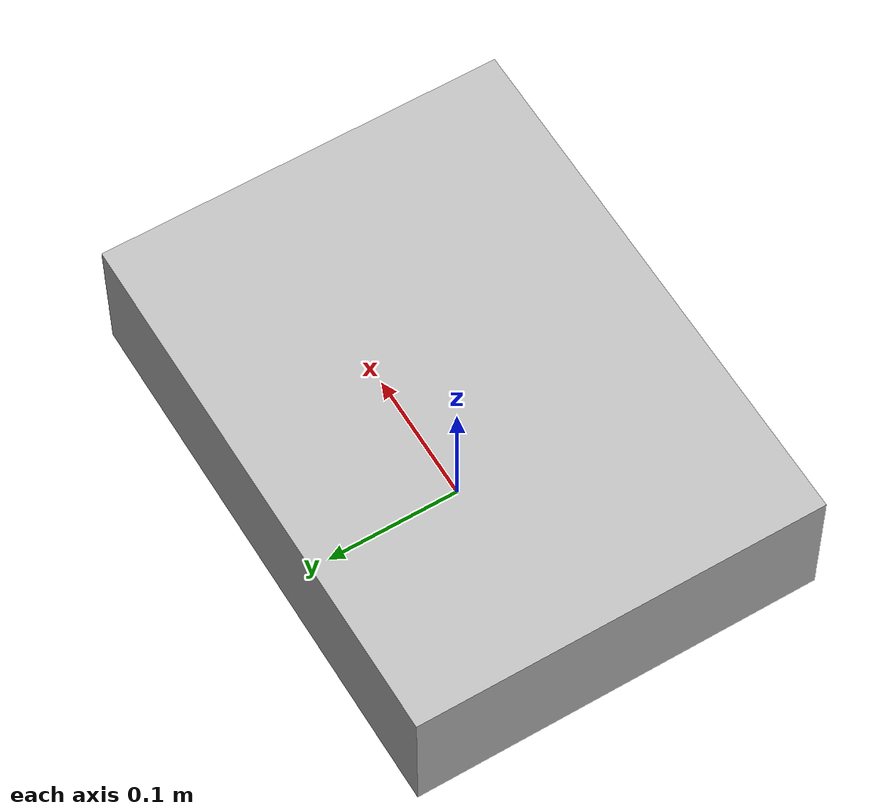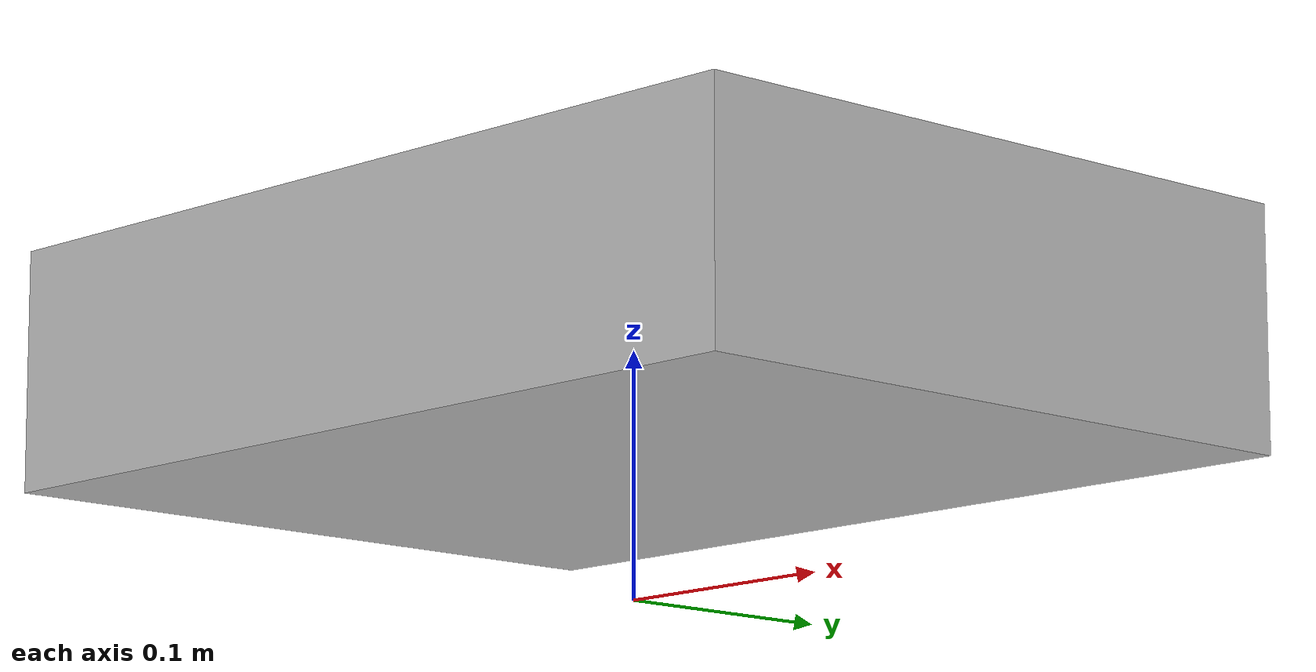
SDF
<?xml version="1.0"?>
<sdf version="1.9">
  <model name="explore_robot">
    <static>false</static>
    <plugin
      filename="gz-sim-ray-sensor-system"
      name="gz::sim::systems::RaySensor"/>
    <!-- BASE LINK -->
    <link name="base_link">
      <pose>0 0 0.1 0 0 0</pose>

      <inertial>
        <mass>5.0</mass>
        <inertia>
          <ixx>0.1</ixx>
          <iyy>0.1</iyy>
          <izz>0.1</izz>
        </inertia>
      </inertial>

      <collision name="collision">
        <geometry>
          <box>
            <size>0.4 0.3 0.1</size>
          </box>
        </geometry>
      </collision>

      <visual name="visual">
        <geometry>
          <box>
            <size>0.4 0.3 0.1</size>
          </box>
        </geometry>
      </visual>
    </link>

    <!-- LIDAR LINK -->
    <link name="laser_link">
      <pose>0.2 0 0.2 0 0 0</pose>

      <sensor name="laser" type="ray">
        <always_on>true</always_on>
        <visualize>true</visualize>
        <update_rate>10</update_rate>

        <ray>
          <scan>
            <horizontal>
              <samples>360</samples>
              <min_angle>-3.14159</min_angle>
              <max_angle>3.14159</max_angle>
            </horizontal>
          </scan>
          <range>
            <min>0.12</min>
            <max>8.0</max>
          </range>
        </ray>

        <topic>scan</topic>
      </sensor>
    </link>

    <!-- FIXED JOINT -->
    <joint name="laser_joint" type="fixed">
      <parent>base_link</parent>
      <child>laser_link</child>
    </joint>

  </model>
</sdf>
